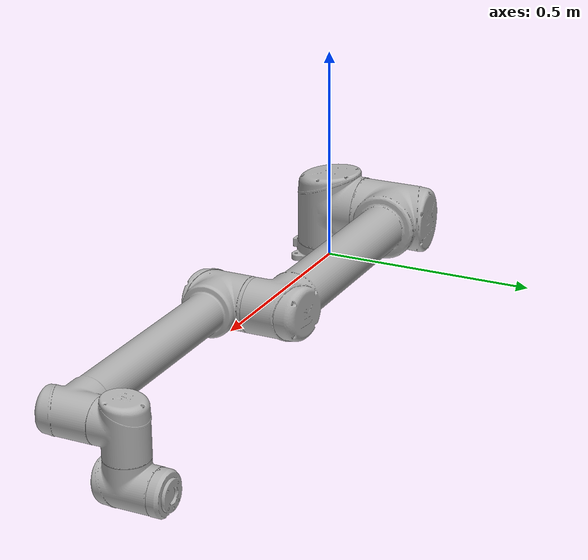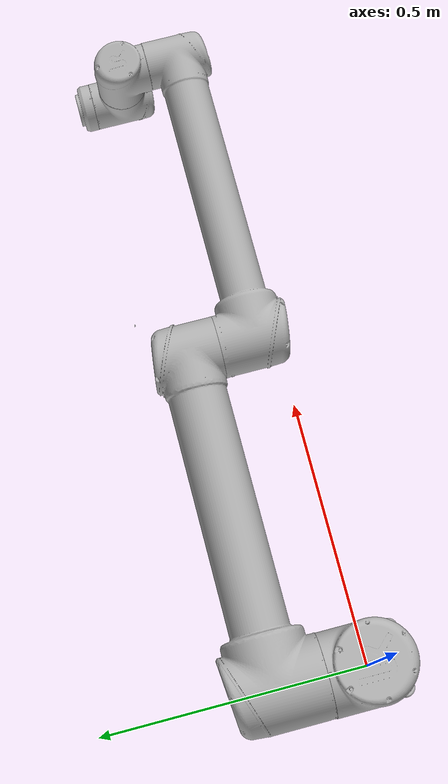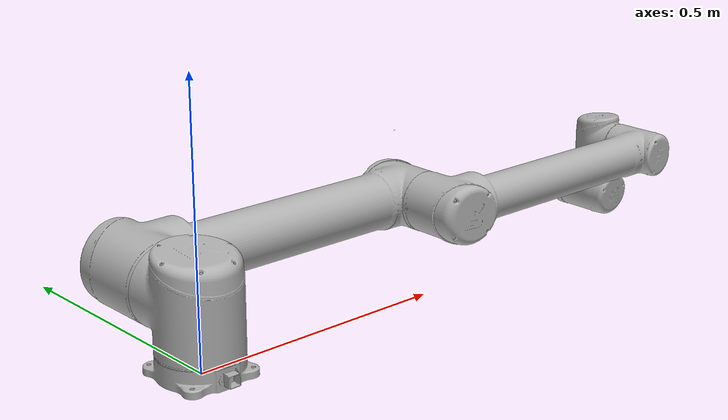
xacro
<?xml version="1.0"?>
<robot xmlns:xacro="http://wiki.ros.org/xacro"
       name="ur10" >

  <xacro:arg name="transmission_hw_interface" default="hardware_interface/PositionJointInterface"/>

  <!-- common stuff -->
  <xacro:include filename="$(find ur_description)/urdf/common.gazebo.xacro" />

  <!-- ur10 -->
  <xacro:include filename="$(find ur_description)/urdf/ur10.urdf.xacro" />

  <!-- arm -->
  <xacro:ur10_robot prefix="" joint_limited="true"
    shoulder_pan_lower_limit="${-pi}" shoulder_pan_upper_limit="${pi}"
    shoulder_lift_lower_limit="${-pi}" shoulder_lift_upper_limit="${pi}"
    elbow_joint_lower_limit="${-pi}" elbow_joint_upper_limit="${pi}"
    wrist_1_lower_limit="${-pi}" wrist_1_upper_limit="${pi}"
    wrist_2_lower_limit="${-pi}" wrist_2_upper_limit="${pi}"
    wrist_3_lower_limit="${-pi}" wrist_3_upper_limit="${pi}"
    transmission_hw_interface="$(arg transmission_hw_interface)"
/>

  <link name="world" />

  <joint name="world_joint" type="fixed">
    <parent link="world" />
    <child link = "base_link" />
    <origin xyz="0.0 0.0 0.0" rpy="0.0 0.0 0.0" />
  </joint>

</robot>

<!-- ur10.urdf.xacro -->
<robot xmlns:xacro="http://wiki.ros.org/xacro">

<!--
  Author: Kelsey Hawkins
  Contributers: Jimmy Da Silva, Ajit Krisshna N L, Muhammad Asif Rana
-->

  <xacro:include filename="$(find ur_description)/urdf/ur.transmission.xacro" />
  <xacro:include filename="$(find ur_description)/urdf/ur.gazebo.xacro" />

  <xacro:macro name="cylinder_inertial" params="radius length mass *origin">
    <inertial>
      <mass value="${mass}" />
      <xacro:insert_block name="origin" />
      <inertia ixx="${0.0833333 * mass * (3 * radius * radius + length * length)}" ixy="0.0" ixz="0.0"
        iyy="${0.0833333 * mass * (3 * radius * radius + length * length)}" iyz="0.0"
        izz="${0.5 * mass * radius * radius}" />
    </inertial>
  </xacro:macro>

  <xacro:macro name="ur10_robot" params="prefix joint_limited
    shoulder_pan_lower_limit:=${-pi}    shoulder_pan_upper_limit:=${pi}
    shoulder_lift_lower_limit:=${-pi}    shoulder_lift_upper_limit:=${pi}
    elbow_joint_lower_limit:=${-pi}    elbow_joint_upper_limit:=${pi}
    wrist_1_lower_limit:=${-pi}    wrist_1_upper_limit:=${pi}
    wrist_2_lower_limit:=${-pi}    wrist_2_upper_limit:=${pi}
    wrist_3_lower_limit:=${-pi}    wrist_3_upper_limit:=${pi}
    transmission_hw_interface:=hardware_interface/PositionJointInterface
    safety_limits:=false safety_pos_margin:=0.15
    safety_k_position:=20">

    <!-- Inertia parameters -->
    <xacro:property name="base_mass" value="4.0" />  <!-- This mass might be incorrect -->
    <xacro:property name="shoulder_mass" value="7.778" />
    <xacro:property name="upper_arm_mass" value="12.93" />
    <xacro:property name="forearm_mass" value="3.87" />
    <xacro:property name="wrist_1_mass" value="1.96" />
    <xacro:property name="wrist_2_mass" value="1.96" />
    <xacro:property name="wrist_3_mass" value="0.202" />

    <xacro:property name="shoulder_cog" value="0.00008 0.00244 -0.037" />
    <xacro:property name="upper_arm_cog" value="0.00001 0.15061 0.38757" />
    <xacro:property name="forearm_cog" value="-0.00012 0.06112 0.1984" />
    <xacro:property name="wrist_1_cog" value="-0.00021 -0.00112 0.02269" />
    <xacro:property name="wrist_2_cog" value="-0.00021 0.00112 0.002269" />
    <xacro:property name="wrist_3_cog" value="0 -0.001156 -0.00149" />

    <!-- Kinematic model -->
    <!-- Properties from urcontrol.conf -->
    <xacro:property name="d1" value="0.1273" />
    <xacro:property name="a2" value="-0.612" />
    <xacro:property name="a3" value="-0.5723" />
    <xacro:property name="d4" value="0.163941" />
    <xacro:property name="d5" value="0.1157" />
    <xacro:property name="d6" value="0.0922" />

    <!-- Arbitrary offsets for shoulder/elbow joints -->
    <xacro:property name="shoulder_offset" value="0.220941" />  <!-- measured from model -->
    <xacro:property name="elbow_offset" value="-0.1719" /> <!-- measured from model -->
    <xacro:property name="upper_arm_inertia_offset" value="0.045" />  <!-- measured from model -->

    <!-- link lengths used in model -->
    <xacro:property name="shoulder_height" value="${d1}" />
    <xacro:property name="upper_arm_length" value="${-a2}" />
    <xacro:property name="forearm_length" value="${-a3}" />
    <xacro:property name="wrist_1_length" value="${d4 - elbow_offset - shoulder_offset}" />
    <xacro:property name="wrist_2_length" value="${d5}" />
    <xacro:property name="wrist_3_length" value="${d6}" />

    <link name="${prefix}base_link" >
      <visual>
        <geometry>
          <mesh filename="package://ur_description/meshes/ur10/visual/base.dae"/>
        </geometry>
        <material name="LightGrey">
          <color rgba="0.7 0.7 0.7 1.0"/>
        </material>
      </visual>
      <collision>
        <geometry>
          <mesh filename="package://ur_description/meshes/ur10/collision/base.stl"/>
        </geometry>
      </collision>
      <xacro:cylinder_inertial radius="0.075" length="0.038" mass="${base_mass}">
        <origin xyz="0.0 0.0 0.0" rpy="0 0 0" />
      </xacro:cylinder_inertial>
    </link>

    <joint name="${prefix}shoulder_pan_joint" type="revolute">
      <parent link="${prefix}base_link" />
      <child link = "${prefix}shoulder_link" />
      <origin xyz="0.0 0.0 ${shoulder_height}" rpy="0.0 0.0 0.0" />
      <axis xyz="0 0 1" />
      <xacro:unless value="${joint_limited}">
        <limit lower="${-2.0 * pi}" upper="${2.0 * pi}" effort="330.0" velocity="2.16"/>
        <xacro:if value="${safety_limits}">
          <safety_controller soft_lower_limit="${-2.0 * pi + safety_pos_margin}" soft_upper_limit="${2.0 * pi - safety_pos_margin}" k_position="${safety_k_position}" k_velocity="0.0"/>
        </xacro:if>
      </xacro:unless>
      <xacro:if value="${joint_limited}">
        <limit lower="${shoulder_pan_lower_limit}" upper="${shoulder_pan_upper_limit}" effort="330.0" velocity="2.16"/>
        <xacro:if value="${safety_limits}">
          <safety_controller soft_lower_limit="${shoulder_pan_lower_limit + safety_pos_margin}" soft_upper_limit="${shoulder_pan_upper_limit - safety_pos_margin}" k_position="${safety_k_position}" k_velocity="0.0"/>
        </xacro:if>
      </xacro:if>
      <dynamics damping="0.0" friction="0.0"/>
    </joint>

    <link name="${prefix}shoulder_link">
      <visual>
        <geometry>
          <mesh filename="package://ur_description/meshes/ur10/visual/shoulder.dae"/>
        </geometry>
        <material name="LightGrey">
          <color rgba="0.7 0.7 0.7 1.0"/>
        </material>
      </visual>
      <collision>
        <geometry>
          <mesh filename="package://ur_description/meshes/ur10/collision/shoulder.stl"/>
        </geometry>
      </collision>
      <xacro:cylinder_inertial radius="0.075" length="0.178" mass="${shoulder_mass}">
        <origin xyz="0.0 0.0 0.0" rpy="0 0 0" />
      </xacro:cylinder_inertial>
    </link>

    <joint name="${prefix}shoulder_lift_joint" type="revolute">
      <parent link="${prefix}shoulder_link" />
      <child link = "${prefix}upper_arm_link" />
      <origin xyz="0.0 ${shoulder_offset} 0.0" rpy="0.0 ${pi / 2.0} 0.0" />
      <axis xyz="0 1 0" />
      <xacro:unless value="${joint_limited}">
        <limit lower="${-2.0 * pi}" upper="${2.0 * pi}" effort="330.0" velocity="2.16"/>
        <xacro:if value="${safety_limits}">
          <safety_controller soft_lower_limit="${-2.0 * pi + safety_pos_margin}" soft_upper_limit="${2.0 * pi - safety_pos_margin}" k_position="${safety_k_position}" k_velocity="0.0"/>
        </xacro:if>
      </xacro:unless>
      <xacro:if value="${joint_limited}">
        <limit lower="${shoulder_lift_lower_limit}" upper="${shoulder_lift_upper_limit}" effort="330.0" velocity="2.16"/>
        <xacro:if value="${safety_limits}">
          <safety_controller soft_lower_limit="${shoulder_lift_lower_limit + safety_pos_margin}" soft_upper_limit="${shoulder_lift_upper_limit - safety_pos_margin}" k_position="${safety_k_position}" k_velocity="0.0"/>
        </xacro:if>
      </xacro:if>
      <dynamics damping="0.0" friction="0.0"/>
    </joint>

    <link name="${prefix}upper_arm_link">
      <visual>
        <geometry>
          <mesh filename="package://ur_description/meshes/ur10/visual/upperarm.dae"/>
        </geometry>
        <material name="LightGrey">
          <color rgba="0.7 0.7 0.7 1.0"/>
        </material>
      </visual>
      <collision>
        <geometry>
          <mesh filename="package://ur_description/meshes/ur10/collision/upperarm.stl"/>
        </geometry>
      </collision>
      <xacro:cylinder_inertial radius="0.075" length="${-a2}" mass="${upper_arm_mass}">
        <origin xyz="0.0 ${-upper_arm_inertia_offset} ${-a2/2.0}" rpy="0 0 0" />
      </xacro:cylinder_inertial>
    </link>

    <joint name="${prefix}elbow_joint" type="revolute">
      <parent link="${prefix}upper_arm_link" />
      <child link = "${prefix}forearm_link" />
      <origin xyz="0.0 ${elbow_offset} ${upper_arm_length}" rpy="0.0 0.0 0.0" />
      <axis xyz="0 1 0" />
      <xacro:unless value="${joint_limited}">
        <limit lower="${-pi}" upper="${pi}" effort="150.0" velocity="3.15"/>
        <xacro:if value="${safety_limits}">
          <safety_controller soft_lower_limit="${-2.0 * pi + safety_pos_margin}" soft_upper_limit="${2.0 * pi - safety_pos_margin}" k_position="${safety_k_position}" k_velocity="0.0"/>
        </xacro:if>
      </xacro:unless>
      <xacro:if value="${joint_limited}">
        <limit lower="${elbow_joint_lower_limit}" upper="${elbow_joint_upper_limit}" effort="150.0" velocity="3.15"/>
        <xacro:if value="${safety_limits}">
          <safety_controller soft_lower_limit="${elbow_joint_lower_limit + safety_pos_margin}" soft_upper_limit="${elbow_joint_upper_limit - safety_pos_margin}" k_position="${safety_k_position}" k_velocity="0.0"/>
        </xacro:if>
      </xacro:if>
      <dynamics damping="0.0" friction="0.0"/>
    </joint>

    <link name="${prefix}forearm_link">
      <visual>
         <geometry>
          <mesh filename="package://ur_description/meshes/ur10/visual/forearm.dae"/>
        </geometry>
        <material name="LightGrey">
          <color rgba="0.7 0.7 0.7 1.0"/>
        </material>
      </visual>
      <collision>
        <geometry>
          <mesh filename="package://ur_description/meshes/ur10/collision/forearm.stl"/>
        </geometry>
      </collision>
      <xacro:cylinder_inertial radius="0.075" length="${-a3}" mass="${forearm_mass}">
        <origin xyz="0.0 0.0 ${-a3/2.0}" rpy="0 0 0" />
      </xacro:cylinder_inertial>
    </link>

    <joint name="${prefix}wrist_1_joint" type="revolute">
      <parent link="${prefix}forearm_link" />
      <child link = "${prefix}wrist_1_link" />
      <origin xyz="0.0 0.0 ${forearm_length}" rpy="0.0 ${pi / 2.0} 0.0" />
      <axis xyz="0 1 0" />
      <xacro:unless value="${joint_limited}">
        <limit lower="${-2.0 * pi}" upper="${2.0 * pi}" effort="54.0" velocity="3.2"/>
        <xacro:if value="${safety_limits}">
          <safety_controller soft_lower_limit="${-2.0 * pi + safety_pos_margin}" soft_upper_limit="${2.0 * pi - safety_pos_margin}" k_position="${safety_k_position}" k_velocity="0.0"/>
        </xacro:if>
      </xacro:unless>
      <xacro:if value="${joint_limited}">
        <limit lower="${wrist_1_lower_limit}" upper="${wrist_1_upper_limit}" effort="54.0" velocity="3.2"/>
        <xacro:if value="${safety_limits}">
          <safety_controller soft_lower_limit="${wrist_1_lower_limit + safety_pos_margin}" soft_upper_limit="${wrist_1_upper_limit - safety_pos_margin}" k_position="${safety_k_position}" k_velocity="0.0"/>
        </xacro:if>
      </xacro:if>
      <dynamics damping="0.0" friction="0.0"/>
    </joint>

    <link name="${prefix}wrist_1_link">
      <visual>
        <geometry>
          <mesh filename="package://ur_description/meshes/ur10/visual/wrist1.dae"/>
        </geometry>
        <material name="LightGrey">
          <color rgba="0.7 0.7 0.7 1.0"/>
        </material>
      </visual>
      <collision>
        <geometry>
          <mesh filename="package://ur_description/meshes/ur10/collision/wrist1.stl"/>
        </geometry>
      </collision>
      <xacro:cylinder_inertial radius="0.075" length="0.12" mass="${wrist_1_mass}">
        <origin xyz="0.0 ${wrist_1_length} 0.0" rpy="0 0 0" />
      </xacro:cylinder_inertial>
    </link>

    <joint name="${prefix}wrist_2_joint" type="revolute">
      <parent link="${prefix}wrist_1_link" />
      <child link = "${prefix}wrist_2_link" />
      <origin xyz="0.0 ${wrist_1_length} 0.0" rpy="0.0 0.0 0.0" />
      <axis xyz="0 0 1" />
      <xacro:unless value="${joint_limited}">
        <limit lower="${-2.0 * pi}" upper="${2.0 * pi}" effort="54.0" velocity="3.2"/>
        <xacro:if value="${safety_limits}">
          <safety_controller soft_lower_limit="${-2.0 * pi + safety_pos_margin}" soft_upper_limit="${2.0 * pi - safety_pos_margin}" k_position="${safety_k_position}" k_velocity="0.0"/>
        </xacro:if>
      </xacro:unless>
      <xacro:if value="${joint_limited}">
        <limit lower="${wrist_2_lower_limit}" upper="${wrist_2_upper_limit}" effort="54.0" velocity="3.2"/>
        <xacro:if value="${safety_limits}">
          <safety_controller soft_lower_limit="${wrist_2_lower_limit + safety_pos_margin}" soft_upper_limit="${wrist_2_upper_limit - safety_pos_margin}" k_position="${safety_k_position}" k_velocity="0.0"/>
        </xacro:if>
      </xacro:if>
      <dynamics damping="0.0" friction="0.0"/>
    </joint>

    <link name="${prefix}wrist_2_link">
      <visual>
        <geometry>
          <mesh filename="package://ur_description/meshes/ur10/visual/wrist2.dae"/>
        </geometry>
        <material name="LightGrey">
          <color rgba="0.7 0.7 0.7 1.0"/>
        </material>
      </visual>
      <collision>
        <geometry>
          <mesh filename="package://ur_description/meshes/ur10/collision/wrist2.stl"/>
        </geometry>
      </collision>
      <xacro:cylinder_inertial radius="0.075" length="0.12" mass="${wrist_2_mass}">
        <origin xyz="0.0 0.0 ${wrist_2_length}" rpy="0 0 0" />
      </xacro:cylinder_inertial>
    </link>

    <joint name="${prefix}wrist_3_joint" type="revolute">
      <parent link="${prefix}wrist_2_link" />
      <child link = "${prefix}wrist_3_link" />
      <origin xyz="0.0 0.0 ${wrist_2_length}" rpy="0.0 0.0 0.0" />
      <axis xyz="0 1 0" />
      <xacro:unless value="${joint_limited}">
        <limit lower="${-2.0 * pi}" upper="${2.0 * pi}" effort="54.0" velocity="3.2"/>
        <xacro:if value="${safety_limits}">
          <safety_controller soft_lower_limit="${-2.0 * pi + safety_pos_margin}" soft_upper_limit="${2.0 * pi - safety_pos_margin}" k_position="${safety_k_position}" k_velocity="0.0"/>
        </xacro:if>
      </xacro:unless>
      <xacro:if value="${joint_limited}">
        <limit lower="${wrist_3_lower_limit}" upper="${wrist_3_upper_limit}" effort="54.0" velocity="3.2"/>
        <xacro:if value="${safety_limits}">
          <safety_controller soft_lower_limit="${wrist_3_lower_limit + safety_pos_margin}" soft_upper_limit="${wrist_3_upper_limit - safety_pos_margin}" k_position="${safety_k_position}" k_velocity="0.0"/>
        </xacro:if>
      </xacro:if>
      <dynamics damping="0.0" friction="0.0"/>
    </joint>

    <link name="${prefix}wrist_3_link">
      <visual>
        <geometry>
          <mesh filename="package://ur_description/meshes/ur10/visual/wrist3.dae"/>
        </geometry>
        <material name="LightGrey">
          <color rgba="0.7 0.7 0.7 1.0"/>
        </material>
      </visual>
      <collision>
        <geometry>
          <mesh filename="package://ur_description/meshes/ur10/collision/wrist3.stl"/>
        </geometry>
      </collision>
      <xacro:cylinder_inertial radius="0.045" length="0.0305" mass="${wrist_3_mass}">
        <origin xyz="0.0 ${wrist_3_length - 0.0305/2} 0.0" rpy="${pi/2} 0 0" />
      </xacro:cylinder_inertial>
    </link>

    <joint name="${prefix}ee_fixed_joint" type="fixed">
      <parent link="${prefix}wrist_3_link" />
      <child link = "${prefix}ee_link" />
      <origin xyz="0.0 ${wrist_3_length} 0.0" rpy="0.0 0.0 ${pi/2.0}" />
    </joint>

    <link name="${prefix}ee_link">
      <collision>
        <geometry>
          <box size="0.01 0.01 0.01"/>
        </geometry>
        <origin rpy="0 0 0" xyz="-0.01 0 0"/>
      </collision>
    </link>

    <xacro:ur_arm_transmission prefix="${prefix}" hw_interface="${transmission_hw_interface}" />
    <xacro:ur_arm_gazebo prefix="${prefix}" />

    <!-- ROS base_link to UR 'Base' Coordinates transform -->
    <link name="${prefix}base"/>
    <joint name="${prefix}base_link-base_fixed_joint" type="fixed">
      <!-- NOTE: this rotation is only needed as long as base_link itself is
                 not corrected wrt the real robot (ie: rotated over 180
                 degrees)
      -->
      <origin xyz="0 0 0" rpy="0 0 ${-pi}"/>
      <parent link="${prefix}base_link"/>
      <child link="${prefix}base"/>
    </joint>

    <!-- Frame coincident with all-zeros TCP on UR controller -->
    <link name="${prefix}tool0"/>
    <joint name="${prefix}wrist_3_link-tool0_fixed_joint" type="fixed">
      <origin xyz="0 ${wrist_3_length} 0" rpy="${pi/-2.0} 0 0"/>
      <parent link="${prefix}wrist_3_link"/>
      <child link="${prefix}tool0"/>
    </joint>

  </xacro:macro>
</robot>
